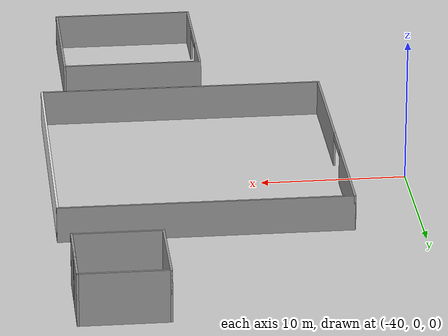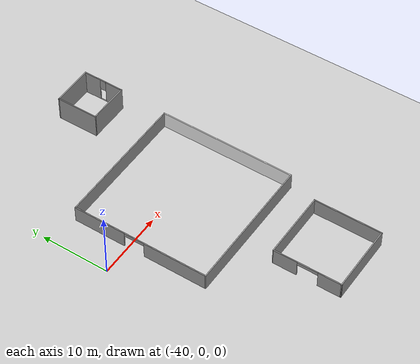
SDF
<sdf version="1.7">
 <world name="world">
  <gravity>0 0 -9.8</gravity>
  <physics name="default_physics" default="0" type="ode">
   <max_step_size>0.001</max_step_size>
   <real_time_factor>1</real_time_factor>
   <real_time_update_rate>1000</real_time_update_rate>
  </physics>
  <scene><ambient>0.6 0.6 0.6 1</ambient><background>0.4 0.4 0.4 1</background><shadows>0</shadows></scene>
  <light name="sun" type="directional">
   <pose>0 0 10 0 -0 0</pose>
   <diffuse>0.8 0.8 0.8 1</diffuse>
   <specular>0.2 0.2 0.2 1</specular>
   <attenuation>
    <range>1000</range>
    <constant>0.9</constant>
    <linear>0.01</linear>
    <quadratic>0.001</quadratic>
   </attenuation>
   <direction>-0.5 0.1 -0.9</direction>
   <spot><inner_angle>0</inner_angle><outer_angle>0</outer_angle><falloff>0</falloff></spot>
  </light>
  <model name="ground_plane">
   <static>1</static>
   <link name="link">
    <collision name="collision">
     <geometry><plane><normal>0 0 1</normal><size>100 100</size></plane></geometry>
     <surface>
      <contact><collide_bitmask>65535</collide_bitmask></contact>
      <friction><ode><mu>100</mu><mu2>50</mu2></ode></friction>
     </surface>
    </collision>
    <visual name="visual">
     <cast_shadows>0</cast_shadows>
     <geometry><plane><normal>0 0 1</normal><size>100 100</size></plane></geometry>
     <material>
      <script><uri>file://media/materials/scripts/gazebo.material</uri><name>Gazebo/Grey</name></script>
     </material>
    </visual>
   </link>
   <pose>0 0 -0.1 0 -0 0</pose>
  </model>
  <model name="CGMClassic_1"/>
  <model name="StorageRack_1"/>
  <model name="CGMClassic_2"/>
  <model name="Chair_1"/>
  <model name="Chair_2"/>
  <model name="Scrubs_1"/>
  <model name="Scrubs_2"/>
  <model name="PatientWheelChair_1"/>
  <model name="Scrubs_3"/>
  <model name="WhiteChipChair_1"/>
  <model name="TrolleyBed_1"/>
  <model name="SurgicalTrolley_1"/>
  <model name="CGMClassic_3"/>
  <model name="PotatoChipChair_2"/>
  <model name="PotatoChipChair_3"/>
  <model name="PotatoChipChair_4"/>
  <model name="PotatoChipChair_5"/>
  <model name="PotatoChipChair_6"/>
  <model name="PotatoChipChair_7"/>
  <model name="PotatoChipChair_8"/>
  <model name="VisitorKidSit_1"/>
  <model name="FemaleVisitorSit_1"/>
  <model name="AdjTable_1"/>
  <model name="PotatoChipChair_9"/>
  <model name="PotatoChipChair_10"/>
  <model name="PotatoChipChair_11"/>
  <model name="PotatoChipChair_12"/>
  <model name="PotatoChipChair_13"/>
  <model name="PotatoChipChair_14"/>
  <model name="PotatoChipChair_15"/>
  <model name="PotatoChipChair_16"/>
  <model name="MopCart3_1"/>
  <model name="MaleVisitorSit_1"/>
  <model name="Drawer_1"/>
  <model name="Drawer_2"/>
  <model name="OfficeChairBlack_1"/>
  <model name="OfficeChairBlack_2"/>
  <model name="AdjTable_2"/>
  <model name="Drawer_3"/>
  <model name="Drawer_4"/>
  <model name="ElderLadyPatient_1"/>
  <model name="ElderLadyPatient_2"/>
  <model name="CGMClassic_4"/>
  <model name="InstrumentCart1_1"/>
  <model name="ElderMalePatient_1"/>
  <model name="InstrumentCart2_1"/>
  <model name="InstrumentCart2_2"/>
  <model name="MetalCabinet_1"/>
  <model name="MetalCabinet_2"/>
  <model name="CGMClassic_5"/>
  <model name="CGMClassic_6"/>
  <model name="BedTable_1"/>
  <model name="BedTable_2"/>
  <model name="BedsideTable_1"/>
  <model name="AnesthesiaMachine_1"/>
  <model name="TrolleyBedPatient_1"/>
  <model name="Scrubs_4"/>
  <model name="Shower_1"/>
  <model name="Shower_2"/>
  <model name="SurgicalTrolley_2"/>
  <model name="SurgicalTrolley_3"/>
  <model name="SurgicalTrolleyMed_1"/>
  <model name="Scrubs_5"/>
  <model name="InstrumentCart1_2"/>
  <model name="InstrumentCart2_3"/>
  <model name="StorageRackCovered_1"/>
  <model name="StorageRack_2"/>
  <model name="KitchenSink_1"/>
  <model name="KitchenSink_2"/>
  <model name="Toilet_1"/>
  <model name="Toilet_2"/>
  <model name="Toilet_3"/>
  <model name="Toilet_4"/>
  <model name="Toilet_5"/>
  <model name="Toilet_6"/>
  <model name="CGMClassic_7"/>
  <model name="CGMClassic_8"/>
  <model name="MetalCabinet_3"/>
  <model name="MetalCabinet_4"/>
  <model name="ParkingTrolleyMin_1"/>
  <model name="PatientFSit_1"/>
  <model name="MaleVisitorOnPhone_1"/>
  <model name="FemaleVisitor_1"/>
  <model name="MaleVisitorSit_2"/>
  <model name="Scrubs_6"/>
  <model name="MalePatientBed_1"/>
  <model name="CGMClassic_9"/>
  <model name="StorageRackCoverOpen_1"/>
  <model name="StorageRack_3"/>
  <model name="StorageRack_4"/>
  <model name="StorageRackCovered_2"/>
  <model name="FemaleVisitorSit_2"/>
  <model name="InstrumentCart1_3"/>
  <model name="ParkingTrolleyMax_1"/>
  <model name="ElderMalePatient_2"/>
  <model name="Chair_3"/>
  <model name="XRayMachine_1"/>
  <model name="IVStand_1"/>
  <model name="BloodPressureMonitor_1"/>
  <model name="IVStand_2"/>
  <model name="BMWCart_1"/>
  <model name="Scrubs_7"/>
  <model name="BPCart_1"/>
  <model name="BPCart_2"/>
  <model name="BPCart_3"/>
  <model name="BPCart_4"/>
  <model name="VendingMachine_1"/>
  <model name="VendingMachine_2"/>
  <model name="Chair_4"/>
  <magnetic_field>6e-06 2.3e-05 -4.2e-05</magnetic_field>
  <atmosphere type="adiabatic"/>
  <spherical_coordinates>
   <surface_model>EARTH_WGS84</surface_model>
   <latitude_deg>0</latitude_deg>
   <longitude_deg>0</longitude_deg>
   <elevation>0</elevation>
   <heading_deg>0</heading_deg>
  </spherical_coordinates>
  <model name="Theater_hospital2">
   <link name="Wall_11">
    <pose>9.925 -0.0205 0 0 -0 1.5708</pose>
    <inertial>
     <mass>1</mass>
     <inertia><ixx>1</ixx><ixy>0</ixy><ixz>0</ixz><iyy>1</iyy><iyz>0</iyz><izz>1</izz></inertia>
    </inertial>
    <visual name="Wall_11_Visual">
     <pose>0 0 1.25 0 -0 0</pose>
     <geometry><box><size>20 0.15 2.5</size></box></geometry>
     <material>
      <script><uri>file://media/materials/scripts/gazebo.material</uri><name>Gazebo/White</name></script>
      <ambient>1 1 1 1</ambient>
      <shader type="pixel"><normal_map>__default__</normal_map></shader>
      <diffuse>0.7 0.7 0.7 1</diffuse>
      <specular>0.01 0.01 0.01 1</specular>
      <emissive>0 0 0 1</emissive>
     </material>
     <meta><layer>0</layer></meta>
    </visual>
    <collision name="Wall_11_Collision">
     <pose>0 0 1.25 0 -0 0</pose>
     <geometry><box><size>20 0.15 2.5</size></box></geometry>
     <surface>
      <friction>
       <ode><mu>1</mu><mu2>1</mu2><fdir1>0 0 0</fdir1><slip1>0</slip1><slip2>0</slip2></ode>
       <torsional>
        <coefficient>1</coefficient>
        <patch_radius>0</patch_radius>
        <surface_radius>0</surface_radius>
        <use_patch_radius>1</use_patch_radius>
        <ode><slip>0</slip></ode>
       </torsional>
      </friction>
      <bounce><restitution_coefficient>0</restitution_coefficient><threshold>1e+06</threshold></bounce>
      <contact>
       <collide_without_contact>0</collide_without_contact>
       <collide_without_contact_bitmask>1</collide_without_contact_bitmask>
       <collide_bitmask>1</collide_bitmask>
       <ode>
        <soft_cfm>0</soft_cfm>
        <soft_erp>0.2</soft_erp>
        <kp>1e+13</kp>
        <kd>1</kd>
        <max_vel>0.01</max_vel>
        <min_depth>0</min_depth>
       </ode>
       <bullet>
        <split_impulse>1</split_impulse>
        <split_impulse_penetration_threshold>-0.01</split_impulse_penetration_threshold>
        <soft_cfm>0</soft_cfm>
        <soft_erp>0.2</soft_erp>
        <kp>1e+13</kp>
        <kd>1</kd>
       </bullet>
      </contact>
     </surface>
    </collision>
   </link>
   <link name="Wall_5">
    <pose>-9.925 0.0205 0 0 -0 1.5708</pose>
    <visual name="Wall_5_Visual_0">
     <pose>-5.34699 0 1.25 0 -0 0</pose>
     <geometry><box><size>9.30601 0.15 2.5</size></box></geometry>
     <material>
      <script><uri>file://media/materials/scripts/gazebo.material</uri><name>Gazebo/Grey</name></script>
      <ambient>1 1 1 1</ambient>
      <shader type="pixel"/>
     </material>
     <meta><layer>0</layer></meta>
    </visual>
    <visual name="Wall_5_Visual_1">
     <pose>6.15301 0 1.25 0 -0 0</pose>
     <geometry><box><size>7.69399 0.15 2.5</size></box></geometry>
     <material>
      <script><uri>file://media/materials/scripts/gazebo.material</uri><name>Gazebo/Grey</name></script>
      <ambient>1 1 1 1</ambient>
      <shader type="pixel"/>
     </material>
     <meta><layer>0</layer></meta>
    </visual>
    <visual name="Wall_5_Visual_2">
     <pose>0.806014 0 2.25 0 -0 0</pose>
     <geometry><box><size>3 0.15 0.5</size></box></geometry>
     <material>
      <script><uri>file://media/materials/scripts/gazebo.material</uri><name>Gazebo/Grey</name></script>
      <ambient>1 1 1 1</ambient>
      <shader type="pixel"/>
     </material>
     <meta><layer>0</layer></meta>
    </visual>
    <collision name="Wall_5_Collision_0">
     <pose>-5.34699 0 1.25 0 -0 0</pose>
     <geometry><box><size>9.30601 0.15 2.5</size></box></geometry>
     <surface>
      <friction>
       <ode><mu>1</mu><mu2>1</mu2><fdir1>0 0 0</fdir1><slip1>0</slip1><slip2>0</slip2></ode>
       <torsional>
        <coefficient>1</coefficient>
        <patch_radius>0</patch_radius>
        <surface_radius>0</surface_radius>
        <use_patch_radius>1</use_patch_radius>
        <ode><slip>0</slip></ode>
       </torsional>
      </friction>
      <bounce><restitution_coefficient>0</restitution_coefficient><threshold>1e+06</threshold></bounce>
      <contact>
       <collide_without_contact>0</collide_without_contact>
       <collide_without_contact_bitmask>1</collide_without_contact_bitmask>
       <collide_bitmask>1</collide_bitmask>
       <ode>
        <soft_cfm>0</soft_cfm>
        <soft_erp>0.2</soft_erp>
        <kp>1e+13</kp>
        <kd>1</kd>
        <max_vel>0.01</max_vel>
        <min_depth>0</min_depth>
       </ode>
       <bullet>
        <split_impulse>1</split_impulse>
        <split_impulse_penetration_threshold>-0.01</split_impulse_penetration_threshold>
        <soft_cfm>0</soft_cfm>
        <soft_erp>0.2</soft_erp>
        <kp>1e+13</kp>
        <kd>1</kd>
       </bullet>
      </contact>
     </surface>
    </collision>
    <collision name="Wall_5_Collision_1">
     <pose>6.15301 0 1.25 0 -0 0</pose>
     <geometry><box><size>7.69399 0.15 2.5</size></box></geometry>
     <surface>
      <friction>
       <ode><mu>1</mu><mu2>1</mu2><fdir1>0 0 0</fdir1><slip1>0</slip1><slip2>0</slip2></ode>
       <torsional>
        <coefficient>1</coefficient>
        <patch_radius>0</patch_radius>
        <surface_radius>0</surface_radius>
        <use_patch_radius>1</use_patch_radius>
        <ode><slip>0</slip></ode>
       </torsional>
      </friction>
      <bounce><restitution_coefficient>0</restitution_coefficient><threshold>1e+06</threshold></bounce>
      <contact>
       <collide_without_contact>0</collide_without_contact>
       <collide_without_contact_bitmask>1</collide_without_contact_bitmask>
       <collide_bitmask>1</collide_bitmask>
       <ode>
        <soft_cfm>0</soft_cfm>
        <soft_erp>0.2</soft_erp>
        <kp>1e+13</kp>
        <kd>1</kd>
        <max_vel>0.01</max_vel>
        <min_depth>0</min_depth>
       </ode>
       <bullet>
        <split_impulse>1</split_impulse>
        <split_impulse_penetration_threshold>-0.01</split_impulse_penetration_threshold>
        <soft_cfm>0</soft_cfm>
        <soft_erp>0.2</soft_erp>
        <kp>1e+13</kp>
        <kd>1</kd>
       </bullet>
      </contact>
     </surface>
    </collision>
    <collision name="Wall_5_Collision_2">
     <pose>0.806014 0 2.25 0 -0 0</pose>
     <geometry><box><size>3 0.15 0.5</size></box></geometry>
     <surface>
      <friction>
       <ode><mu>1</mu><mu2>1</mu2><fdir1>0 0 0</fdir1><slip1>0</slip1><slip2>0</slip2></ode>
       <torsional>
        <coefficient>1</coefficient>
        <patch_radius>0</patch_radius>
        <surface_radius>0</surface_radius>
        <use_patch_radius>1</use_patch_radius>
        <ode><slip>0</slip></ode>
       </torsional>
      </friction>
      <bounce><restitution_coefficient>0</restitution_coefficient><threshold>1e+06</threshold></bounce>
      <contact>
       <collide_without_contact>0</collide_without_contact>
       <collide_without_contact_bitmask>1</collide_without_contact_bitmask>
       <collide_bitmask>1</collide_bitmask>
       <ode>
        <soft_cfm>0</soft_cfm>
        <soft_erp>0.2</soft_erp>
        <kp>1e+13</kp>
        <kd>1</kd>
        <max_vel>0.01</max_vel>
        <min_depth>0</min_depth>
       </ode>
       <bullet>
        <split_impulse>1</split_impulse>
        <split_impulse_penetration_threshold>-0.01</split_impulse_penetration_threshold>
        <soft_cfm>0</soft_cfm>
        <soft_erp>0.2</soft_erp>
        <kp>1e+13</kp>
        <kd>1</kd>
       </bullet>
      </contact>
     </surface>
    </collision>
   </link>
   <link name="Wall_7">
    <pose>0 9.9455 0 0 -0 0</pose>
    <visual name="Wall_7_Visual">
     <pose>0 0 1.25 0 -0 0</pose>
     <geometry><box><size>20 0.15 2.5</size></box></geometry>
     <material>
      <script><uri>file://media/materials/scripts/gazebo.material</uri><name>Gazebo/Grey</name></script>
      <ambient>1 1 1 1</ambient>
      <shader type="pixel"/>
     </material>
     <meta><layer>0</layer></meta>
    </visual>
    <collision name="Wall_7_Collision">
     <pose>0 0 1.25 0 -0 0</pose>
     <geometry><box><size>20 0.15 2.5</size></box></geometry>
     <surface>
      <friction>
       <ode><mu>1</mu><mu2>1</mu2><fdir1>0 0 0</fdir1><slip1>0</slip1><slip2>0</slip2></ode>
       <torsional>
        <coefficient>1</coefficient>
        <patch_radius>0</patch_radius>
        <surface_radius>0</surface_radius>
        <use_patch_radius>1</use_patch_radius>
        <ode><slip>0</slip></ode>
       </torsional>
      </friction>
      <bounce><restitution_coefficient>0</restitution_coefficient><threshold>1e+06</threshold></bounce>
      <contact>
       <collide_without_contact>0</collide_without_contact>
       <collide_without_contact_bitmask>1</collide_without_contact_bitmask>
       <collide_bitmask>1</collide_bitmask>
       <ode>
        <soft_cfm>0</soft_cfm>
        <soft_erp>0.2</soft_erp>
        <kp>1e+13</kp>
        <kd>1</kd>
        <max_vel>0.01</max_vel>
        <min_depth>0</min_depth>
       </ode>
       <bullet>
        <split_impulse>1</split_impulse>
        <split_impulse_penetration_threshold>-0.01</split_impulse_penetration_threshold>
        <soft_cfm>0</soft_cfm>
        <soft_erp>0.2</soft_erp>
        <kp>1e+13</kp>
        <kd>1</kd>
       </bullet>
      </contact>
     </surface>
    </collision>
   </link>
   <link name="Wall_9">
    <pose>0 -9.9455 0 0 -0 0</pose>
    <visual name="Wall_9_Visual">
     <pose>0 0 1.25 0 -0 0</pose>
     <geometry><box><size>20 0.15 2.5</size></box></geometry>
     <material>
      <script><uri>file://media/materials/scripts/gazebo.material</uri><name>Gazebo/Grey</name></script>
      <ambient>1 1 1 1</ambient>
      <shader type="pixel"/>
     </material>
     <meta><layer>0</layer></meta>
    </visual>
    <collision name="Wall_9_Collision">
     <pose>0 0 1.25 0 -0 0</pose>
     <geometry><box><size>20 0.15 2.5</size></box></geometry>
     <surface>
      <friction>
       <ode><mu>1</mu><mu2>1</mu2><fdir1>0 0 0</fdir1><slip1>0</slip1><slip2>0</slip2></ode>
       <torsional>
        <coefficient>1</coefficient>
        <patch_radius>0</patch_radius>
        <surface_radius>0</surface_radius>
        <use_patch_radius>1</use_patch_radius>
        <ode><slip>0</slip></ode>
       </torsional>
      </friction>
      <bounce><restitution_coefficient>0</restitution_coefficient><threshold>1e+06</threshold></bounce>
      <contact>
       <collide_without_contact>0</collide_without_contact>
       <collide_without_contact_bitmask>1</collide_without_contact_bitmask>
       <collide_bitmask>1</collide_bitmask>
       <ode>
        <soft_cfm>0</soft_cfm>
        <soft_erp>0.2</soft_erp>
        <kp>1e+13</kp>
        <kd>1</kd>
        <max_vel>0.01</max_vel>
        <min_depth>0</min_depth>
       </ode>
       <bullet>
        <split_impulse>1</split_impulse>
        <split_impulse_penetration_threshold>-0.01</split_impulse_penetration_threshold>
        <soft_cfm>0</soft_cfm>
        <soft_erp>0.2</soft_erp>
        <kp>1e+13</kp>
        <kd>1</kd>
       </bullet>
      </contact>
     </surface>
    </collision>
   </link>
   <static>1</static>
   <pose>-25.4623 -1.7955 0 0 -0 0</pose>
  </model>
  <model name="Endoscopy_room">
   <pose>-22.3572 -21.3961 0 0 -0 1.57296</pose>
   <link name="Wall_1">
    <pose>0 4.925 0 0 -0 0</pose>
    <visual name="Wall_1_Visual_0">
     <pose>-3.27854 0 1.25 0 -0 0</pose>
     <geometry><box><size>3.44291 0.15 2.5</size></box></geometry>
     <material>
      <script><uri>file://media/materials/scripts/gazebo.material</uri><name>Gazebo/Grey</name></script>
      <ambient>1 1 1 1</ambient>
     </material>
     <meta><layer>0</layer></meta>
    </visual>
    <collision name="Wall_1_Collision_0">
     <geometry><box><size>3.44291 0.15 2.5</size></box></geometry>
     <pose>-3.27854 0 1.25 0 -0 0</pose>
    </collision>
    <visual name="Wall_1_Visual_1">
     <pose>3.22146 0 1.25 0 -0 0</pose>
     <geometry><box><size>3.55709 0.15 2.5</size></box></geometry>
     <material>
      <script><uri>file://media/materials/scripts/gazebo.material</uri><name>Gazebo/Grey</name></script>
      <ambient>1 1 1 1</ambient>
     </material>
     <meta><layer>0</layer></meta>
    </visual>
    <collision name="Wall_1_Collision_1">
     <geometry><box><size>3.55709 0.15 2.5</size></box></geometry>
     <pose>3.22146 0 1.25 0 -0 0</pose>
    </collision>
    <visual name="Wall_1_Visual_2">
     <pose>-0.057091 0 2.25 0 -0 0</pose>
     <geometry><box><size>3 0.15 0.5</size></box></geometry>
     <material>
      <script><uri>file://media/materials/scripts/gazebo.material</uri><name>Gazebo/Grey</name></script>
      <ambient>1 1 1 1</ambient>
     </material>
     <meta><layer>0</layer></meta>
    </visual>
    <collision name="Wall_1_Collision_2">
     <geometry><box><size>3 0.15 0.5</size></box></geometry>
     <pose>-0.057091 0 2.25 0 -0 0</pose>
    </collision>
   </link>
   <link name="Wall_3">
    <collision name="Wall_3_Collision">
     <geometry><box><size>10 0.15 2.5</size></box></geometry>
     <pose>0 0 1.25 0 -0 0</pose>
    </collision>
    <visual name="Wall_3_Visual">
     <pose>0 0 1.25 0 -0 0</pose>
     <geometry><box><size>10 0.15 2.5</size></box></geometry>
     <material>
      <script><uri>file://media/materials/scripts/gazebo.material</uri><name>Gazebo/Grey</name></script>
      <ambient>1 1 1 1</ambient>
     </material>
     <meta><layer>0</layer></meta>
    </visual>
    <pose>4.925 -0 0 0 -0 -1.5708</pose>
   </link>
   <link name="Wall_5">
    <collision name="Wall_5_Collision">
     <geometry><box><size>10 0.15 2.5</size></box></geometry>
     <pose>0 0 1.25 0 -0 0</pose>
    </collision>
    <visual name="Wall_5_Visual">
     <pose>0 0 1.25 0 -0 0</pose>
     <geometry><box><size>10 0.15 2.5</size></box></geometry>
     <material>
      <script><uri>file://media/materials/scripts/gazebo.material</uri><name>Gazebo/Grey</name></script>
      <ambient>1 1 1 1</ambient>
     </material>
     <meta><layer>0</layer></meta>
    </visual>
    <pose>-4.925 -0 0 0 -0 -1.5708</pose>
   </link>
   <link name="Wall_7">
    <collision name="Wall_7_Collision">
     <geometry><box><size>10 0.15 2.5</size></box></geometry>
     <pose>0 0 1.25 0 -0 0</pose>
    </collision>
    <visual name="Wall_7_Visual">
     <pose>0 0 1.25 0 -0 0</pose>
     <geometry><box><size>10 0.15 2.5</size></box></geometry>
     <material>
      <script><uri>file://media/materials/scripts/gazebo.material</uri><name>Gazebo/Grey</name></script>
      <ambient>1 1 1 1</ambient>
     </material>
     <meta><layer>0</layer></meta>
    </visual>
    <pose>0 -4.925 0 0 -0 0</pose>
   </link>
   <static>1</static>
  </model>
  <model name="theatre_feet_model">
   <pose>-19.0644 17.9186 0 0 -0 0</pose>
   <link name="Wall_1">
    <collision name="Wall_1_Collision">
     <geometry><box><size>6.096 0.15 3.658</size></box></geometry>
     <pose>0 0 1.829 0 -0 0</pose>
    </collision>
    <visual name="Wall_1_Visual">
     <pose>0 0 1.829 0 -0 0</pose>
     <geometry><box><size>6.096 0.15 3.658</size></box></geometry>
     <material>
      <script><uri>file://media/materials/scripts/gazebo.material</uri><name>Gazebo/Grey</name></script>
      <ambient>1 1 1 1</ambient>
     </material>
     <meta><layer>0</layer></meta>
    </visual>
    <pose>0 2.7895 0 0 -0 0</pose>
   </link>
   <link name="Wall_3">
    <pose>2.973 -0.1835 0 0 -0 -1.5708</pose>
    <visual name="Wall_3_Visual_0">
     <pose>-1.78092 0 1.829 0 -0 0</pose>
     <geometry><box><size>2.53417 0.15 3.658</size></box></geometry>
     <material>
      <script><uri>file://media/materials/scripts/gazebo.material</uri><name>Gazebo/Grey</name></script>
      <ambient>1 1 1 1</ambient>
     </material>
     <meta><layer>0</layer></meta>
    </visual>
    <collision name="Wall_3_Collision_0">
     <geometry><box><size>2.53417 0.15 3.658</size></box></geometry>
     <pose>-1.78092 0 1.829 0 -0 0</pose>
    </collision>
    <visual name="Wall_3_Visual_1">
     <pose>1.71708 0 1.829 0 -0 0</pose>
     <geometry><box><size>2.66183 0.15 3.658</size></box></geometry>
     <material>
      <script><uri>file://media/materials/scripts/gazebo.material</uri><name>Gazebo/Grey</name></script>
      <ambient>1 1 1 1</ambient>
     </material>
     <meta><layer>0</layer></meta>
    </visual>
    <collision name="Wall_3_Collision_1">
     <geometry><box><size>2.66183 0.15 3.658</size></box></geometry>
     <pose>1.71708 0 1.829 0 -0 0</pose>
    </collision>
    <visual name="Wall_3_Visual_2">
     <pose>-0.063831 0 0 0 -0 0</pose>
     <geometry><box><size>0.9 0.15 0</size></box></geometry>
     <material>
      <script><uri>file://media/materials/scripts/gazebo.material</uri><name>Gazebo/Grey</name></script>
      <ambient>1 1 1 1</ambient>
     </material>
     <meta><layer>0</layer></meta>
    </visual>
    <collision name="Wall_3_Collision_2">
     <geometry><box><size>0.9 0.15 0</size></box></geometry>
     <pose>-0.063831 0 0 0 -0 0</pose>
    </collision>
    <visual name="Wall_3_Visual_3">
     <pose>-0.063831 0 2.829 0 -0 0</pose>
     <geometry><box><size>0.9 0.15 1.658</size></box></geometry>
     <material>
      <script><uri>file://media/materials/scripts/gazebo.material</uri><name>Gazebo/Grey</name></script>
      <ambient>1 1 1 1</ambient>
     </material>
     <meta><layer>0</layer></meta>
    </visual>
    <collision name="Wall_3_Collision_3">
     <geometry><box><size>0.9 0.15 1.658</size></box></geometry>
     <pose>-0.063831 0 2.829 0 -0 0</pose>
    </collision>
   </link>
   <link name="Wall_5">
    <collision name="Wall_5_Collision">
     <geometry><box><size>6.096 0.15 3.658</size></box></geometry>
     <pose>0 0 1.829 0 -0 0</pose>
    </collision>
    <visual name="Wall_5_Visual">
     <pose>0 0 1.829 0 -0 0</pose>
     <geometry><box><size>6.096 0.15 3.658</size></box></geometry>
     <material>
      <script><uri>file://media/materials/scripts/gazebo.material</uri><name>Gazebo/Grey</name></script>
      <ambient>1 1 1 1</ambient>
     </material>
     <meta><layer>0</layer></meta>
    </visual>
    <pose>0 -3.1565 0 0 -0 0</pose>
   </link>
   <link name="Wall_7">
    <collision name="Wall_7_Collision">
     <geometry><box><size>6.096 0.15 3.658</size></box></geometry>
     <pose>0 0 1.829 0 -0 0</pose>
    </collision>
    <visual name="Wall_7_Visual">
     <pose>0 0 1.829 0 -0 0</pose>
     <geometry><box><size>6.096 0.15 3.658</size></box></geometry>
     <material>
      <script><uri>file://media/materials/scripts/gazebo.material</uri><name>Gazebo/Grey</name></script>
      <ambient>1 1 1 1</ambient>
     </material>
     <meta><layer>0</layer></meta>
    </visual>
    <pose>-2.973 -0.1835 0 0 -0 -1.5708</pose>
   </link>
   <static>1</static>
  </model>
 </world>
</sdf>
